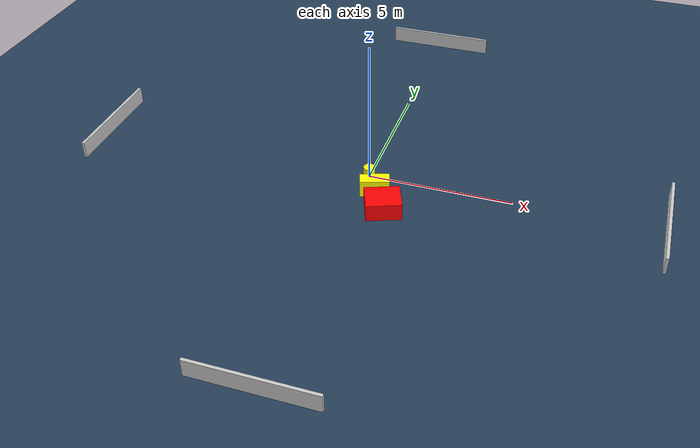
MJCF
<?xml version="1.0" ?>
<mujoco model="generated_environment">
  <option timestep="0.01" integrator="RK4" cone="elliptic"/>
  <default>
    <geom density="1"/>
  </default>
  <asset>
    <texture builtin="gradient" height="3072" name="skybox" rgb1="0.3 0.5 0.7" rgb2="0 0 0" type="skybox" width="512"/>
    <texture builtin="checker" height="300" name="groundplane" rgb1="0.2 0.3 0.4" rgb2="0.1 0.2 0.3" type="2d" width="300"/>
    <material name="groundplane" reflectance="0.2" texrepeat="5 5" texture="groundplane"/>
  </asset>
  <worldbody>
    <light dir="0 0 -1" directional="true" pos="0 0 1.5"/>
    <geom condim="3" friction="0.5 0.005 0.001" material="groundplane" name="floor" pos="0 0 0" size="0 0 0.05" type="plane"/>
    <body name="walls">
      <geom name="wall_1" condim="4" pos="-10.0 0.0 0.3" rgba="0.800000011920929 0.800000011920929 0.800000011920929 1.0" size="0.05 2.0 0.3" type="box"/>
      <geom name="wall_2" condim="4" pos="10.0 0.0 0.3" rgba="0.800000011920929 0.800000011920929 0.800000011920929 1.0" size="0.05 2.0 0.3" type="box"/>
      <geom name="wall_3" condim="4" pos="0.0 -10.0 0.3" rgba="0.800000011920929 0.800000011920929 0.800000011920929 1.0" size="2.0 0.05 0.3" type="box"/>
      <geom name="wall_4" condim="4" pos="0.0 10.0 0.3" rgba="0.800000011920929 0.800000011920929 0.800000011920929 1.0" size="2.0 0.05 0.3" type="box"/>
    </body>
    <body name="robot">
      <joint name="joint_x" type="slide" pos="0 0 0" axis="1 0 0"/>
      <joint name="joint_y" type="slide" pos="0 0 0" axis="0 1 0"/>
      <geom name="robot" type="cylinder" pos="0.0 0.0 0.2" size="0.2 0.2 0.0" mass="5.0" friction="1.0 0.005 0.0001" condim="4" rgba="1.0 1.0 0.0 1.0"/>
    </body>
    <body name="obstacle_1_movable">
      <geom name="obstacle_1_movable" condim="4" pos="0.4461226633270818 -0.8118749640901071 0.3" euler="0 0 288.23619672670566" friction="0.0 0.005 0.001" rgba="1.0 1.0 0.0 1.0" size="0.23422975272158364 0.5057501927259365 0.3" type="box" mass="0.1"/>
      <joint type="free"/>
    </body>
    <body name="obstacle_2_static">
      <geom name="obstacle_2_static" condim="4" pos="1.0029336653504846 -1.6831488314463259 0.3" euler="0 0 201.14860487750335" friction="0.0 0.005 0.001" rgba="1.0 0.0 0.0 1.0" size="0.5975974704309388 0.5129312834260791 0.3" type="box"/>
    </body>
  </worldbody>
  <actuator>
    <motor name="actuator_x" joint="joint_x" gear="1" ctrlrange="-1 1"/>
    <motor name="actuator_y" joint="joint_y" gear="1" ctrlrange="-1 1"/>
  </actuator>
</mujoco>
